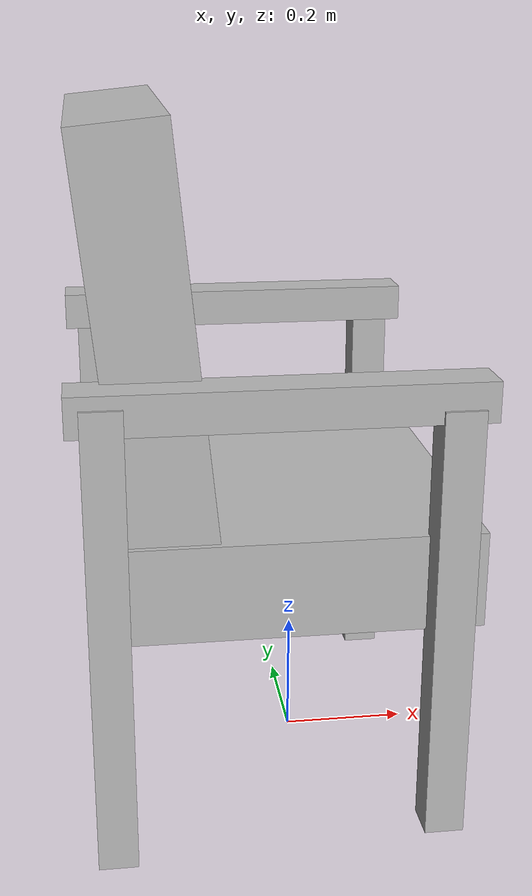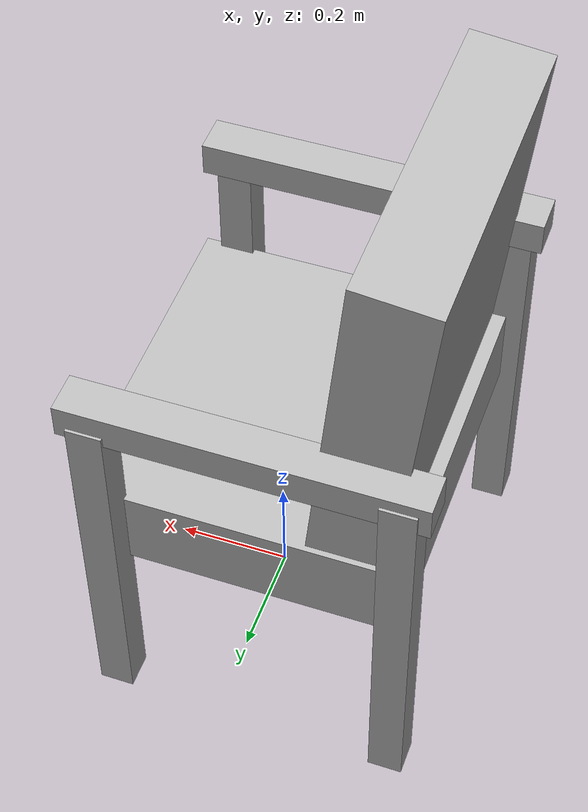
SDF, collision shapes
<?xml version="1.0"?>

<sdf version="1.6">
  <model name='accent_chair'>
    <static>true</static>
    <link name="body">
      <pose>0 0 0 0 0 1.5708</pose>

      <collision name="seat_collision">
        <pose>0 0.03 0.40 0 0 0</pose>
        <geometry><box><size>0.60 0.56 0.15</size></box></geometry>
      </collision>
      <collision name="back_collision">
        <pose>0 0.24 0.72 -0.10 0 0</pose>
        <geometry><box><size>0.58 0.14 0.70</size></box></geometry>
      </collision>
      <collision name="front_left_post_collision">
        <pose>0.32 -0.19 0.34 0 0 0</pose>
        <geometry><box><size>0.06 0.06 0.68</size></box></geometry>
      </collision>
      <collision name="front_right_post_collision">
        <pose>-0.32 -0.19 0.34 0 0 0</pose>
        <geometry><box><size>0.06 0.06 0.68</size></box></geometry>
      </collision>
      <collision name="rear_left_post_collision">
        <pose>0.32 0.31 0.34 0 0 0</pose>
        <geometry><box><size>0.06 0.06 0.72</size></box></geometry>
      </collision>
      <collision name="rear_right_post_collision">
        <pose>-0.32 0.31 0.34 0 0 0</pose>
        <geometry><box><size>0.06 0.06 0.72</size></box></geometry>
      </collision>
      <collision name="left_armrest_collision">
        <pose>0.31 0.06 0.69 0 0 0</pose>
        <geometry><box><size>0.07 0.6 0.06</size></box></geometry>
      </collision>
      <collision name="right_armrest_collision">
        <pose>-0.31 0.06 0.69 0 0 0</pose>
        <geometry><box><size>0.07 0.6 0.06</size></box></geometry>
      </collision>

      <visual name="visual">
        <pose>0 0 0 0 0 0</pose>
        <geometry>
          <mesh>
            <uri>model://accent_chair/meshes/Chair.obj</uri>
            <scale>0.01020 0.01020 0.01020</scale>
          </mesh>
        </geometry>
      </visual>

    </link>
  </model>
</sdf>
